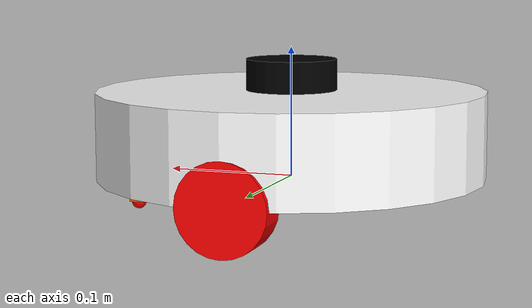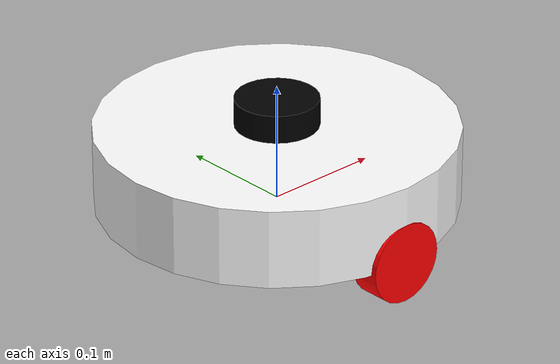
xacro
<?xml version="1.0"?>
<robot name="my_robot" xmlns:xacro="http://www.ros.org/wiki/xacro">

    <xacro:property name="chassis_radius" value="0.15"/>
    <xacro:property name="chassis_height" value="0.067"/>

     <!-- measured diameter is 0.68 -->
    <xacro:property name="wheel_radius" value="0.034"/>
    <xacro:property name="wheel_length" value="0.025"/>

    <xacro:property name="lidar_radius" value="0.035"/>
    <xacro:property name="lidar_length" value="0.024"/>

    <xacro:property name="caster_wheel_base_joint_length" value="0.13"/>
    <xacro:property name="caster_wheel_radius" value="0.006"/>

    <xacro:include filename="inertial_macros.xacro"/>
    <xacro:include filename="materials.xacro"/>
    <xacro:include filename="links.xacro"/>
    <xacro:include filename="joints.xacro"/>

</robot>

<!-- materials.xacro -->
<robot xmlns:xacro="http://www.ros.org/wiki/xacro">

    <material name="white">
        <color rgba="1 1 1 1"/>
    </material>

    <material name="red">
        <color rgba="1 0 0 1"/>
    </material>

    <material name="black">
        <color rgba="0 0 0 1"/>
    </material>

</robot>

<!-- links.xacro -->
<robot xmlns:xacro="http://www.ros.org/wiki/xacro">

    <link name="base_link"/>

    <link name="chassis">
        <visual>
            <origin xyz="0 0 0" rpy="0 0 0"/>
            <geometry>
                <cylinder radius="${chassis_radius}" length="${chassis_height}"/>
            </geometry>
            <material name="white"/>
        </visual>
        <collision>
            <origin xyz="0 0 0" rpy="0 0 0"/>
            <geometry>
                <cylinder radius="${chassis_radius}" length="${chassis_height}"/>
            </geometry>
        </collision>
        <xacro:inertial_cylinder mass="0.5" length="${chassis_height}" radius="${chassis_radius}">
            <origin xyz="${chassis_radius/2} 0 0" rpy="0 0 0"/>
        </xacro:inertial_cylinder>
    </link>

    <xacro:macro name="wheel" params="name *origin">
        <link name="${name}">
            <visual>
                <xacro:insert_block name="origin"/>
                <geometry>
                    <cylinder radius="${wheel_radius}" length="${wheel_length}"/>
                </geometry>
                <material name="red"/>
            </visual>
            <collision>
                <xacro:insert_block name="origin"/>
                <geometry>
                    <sphere radius="${wheel_radius}"/>
                </geometry>
            </collision>
            <xacro:inertial_cylinder mass="0.01" radius="${wheel_radius}" length="${wheel_length}">
                <xacro:insert_block name="origin"/>
            </xacro:inertial_cylinder>
        </link>
    </xacro:macro>

    <xacro:wheel name="left_wheel">
        <origin xyz="0 0 0" rpy="0 0 0"/>
    </xacro:wheel>

    <xacro:wheel name="right_wheel">
        <origin xyz="0 0 0" rpy="0 0 0"/>
    </xacro:wheel>

    <link name="caster_wheel">
        <visual>
            <geometry>
                <sphere radius="${caster_wheel_radius}"/>
            </geometry>
            <material name="red"/>
        </visual>
        <collision>
            <geometry>
                <sphere radius="${caster_wheel_radius}"/>
            </geometry>
        </collision>
        <xacro:inertial_sphere mass="0.001" radius="${caster_wheel_radius}">
            <origin xyz="0 0 0" rpy="0 0 0"/>
        </xacro:inertial_sphere>
    </link>

    <link name="caster_box">
        <visual>
            <geometry>
                <box size="${2*caster_wheel_radius} ${2*caster_wheel_radius} ${wheel_radius - caster_wheel_radius}"/>
            </geometry>
        </visual>
        <collision>
            <geometry>
                <box size="${2*caster_wheel_radius} ${2*caster_wheel_radius} ${wheel_radius - caster_wheel_radius}"/>
            </geometry>
        </collision>
        <xacro:inertial_box mass="0.01" x="${2*caster_wheel_radius}" y="${2*caster_wheel_radius}" z="${wheel_radius - caster_wheel_radius}">
            <origin xyz="0 0 0" rpy="0 0 0"/>
        </xacro:inertial_box>
    </link>

    <link name="lidar">
        <visual>
            <geometry>
                <cylinder radius="${lidar_radius}" length="${lidar_length}"/>
            </geometry>
            <origin xyz="0 0 0" rpy="0 0 0"/>
            <material name="black"/>
        </visual>
        <collision>
            <geometry>
                <cylinder radius="${lidar_radius}" length="${lidar_length}"/>
            </geometry>
            <origin xyz="0 0 ${lidar_length/2}" rpy="0 0 0"/>
        </collision>
        <xacro:inertial_cylinder mass="0.01" radius="${lidar_radius}" length="${lidar_length}">
            <origin xyz="0 0 ${lidar_length/2}" rpy="0 0 0"/>
        </xacro:inertial_cylinder>
    </link>

</robot>

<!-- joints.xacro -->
<robot xmlns:xacro="http://www.ros.org/wiki/xacro">

    <joint name="base_chassis_joint" type="fixed">
        <parent link="base_link"/>
        <child link="chassis"/>
        <origin xyz="0 0 ${chassis_height/2}"/>
    </joint>

    <joint name="left_wheel_base_joint" type="continuous">
        <parent link="base_link"/>
        <child link="left_wheel"/>
        <origin xyz="0 ${chassis_radius - wheel_length/2} 0" rpy="-${pi/2} 0 0"/>
        <axis xyz="0 0 1"/>
    </joint>

    <joint name="right_wheel_base_joint" type="continuous">
        <parent link="base_link"/>
        <child link="right_wheel"/>
        <origin xyz="0 -${chassis_radius - wheel_length/2} 0" rpy="-${pi/2} 0 0"/>
        <axis xyz="0 0 1"/>
    </joint>

    <joint name="caster_box_base_joint" type="fixed">
        <parent link="base_link"/>
        <child link="caster_box"/>
        <origin xyz="${caster_wheel_base_joint_length} 0 -${(wheel_radius - caster_wheel_radius)/2}" rpy="0 0 0"/>
    </joint>

    <joint name="caster_box_caster_wheel_joint" type="fixed">
        <parent link="caster_box"/>
        <child link="caster_wheel"/>
        <origin xyz="0 0 -${(wheel_radius - caster_wheel_radius)/2}" rpy="0 0 0"/>
    </joint>

    <joint name="lidar_base_joint" type="fixed">
        <parent link="base_link"/>
        <child link="lidar"/>
        <origin xyz="0 0 ${chassis_height + lidar_length/2}" rpy="0 0 ${pi}"/>
    </joint>

</robot>
